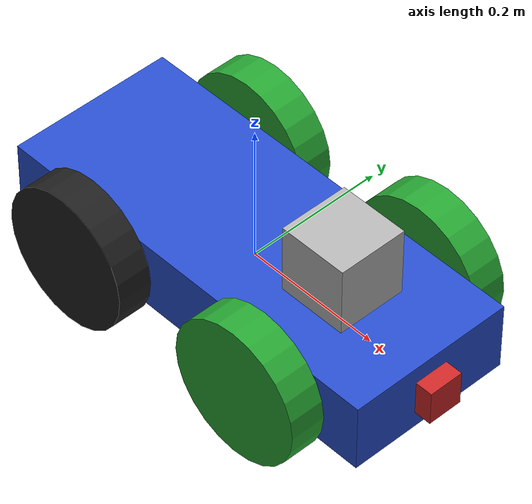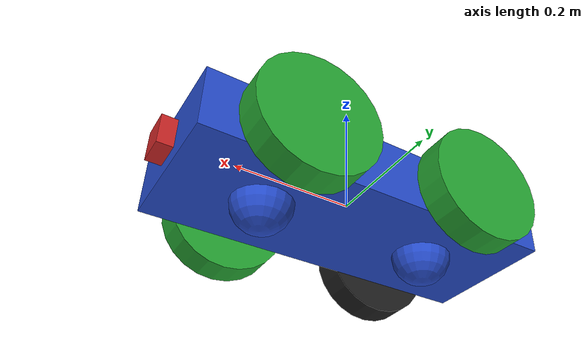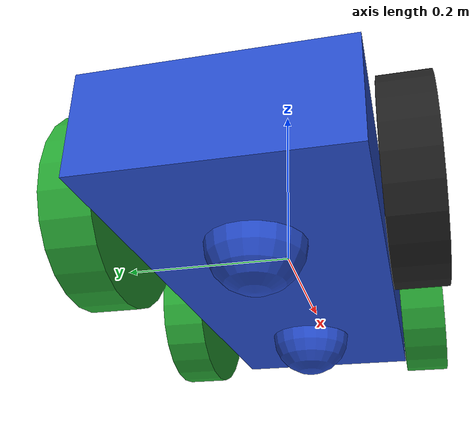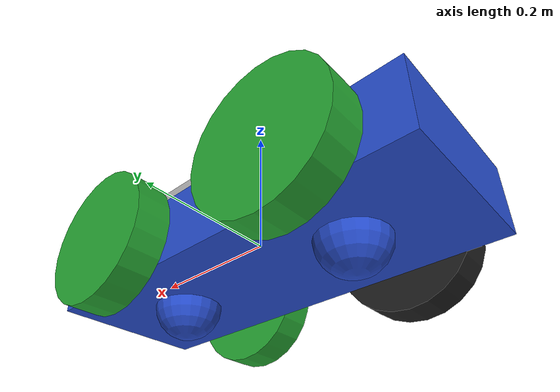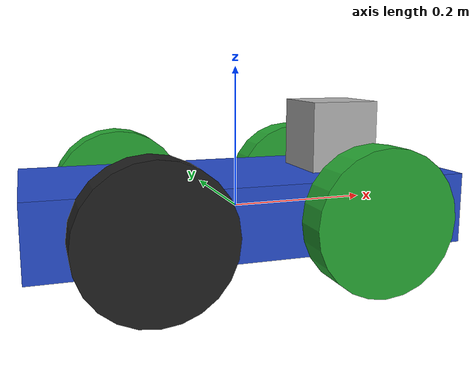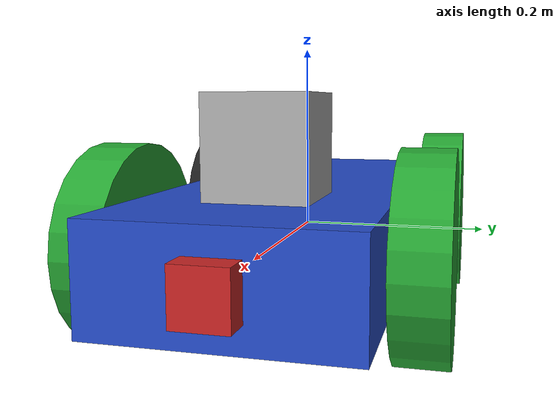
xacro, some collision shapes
<robot name="my_robot" xmlns:xacro="http://www.ros.org/wiki/xacro">

  <link name="robot_footprint"></link>

  <joint name="robot_footprint_joint" type="fixed">
    <origin xyz="0 0 0" rpy="0 0 0" />
    <parent link="robot_footprint"/>
    <child link="chassis" />
  </joint>

  <link name='chassis'>
    <pose>0 0 0.3 0 0 0</pose>

    <inertial>
      <mass value="15.0"/>
      <origin xyz="0.0 0 0" rpy=" 0 0 0"/>
      <inertia
          ixx="0.1" ixy="0" ixz="0"
          iyy="0.1" iyz="0"
          izz="0.1"
      />
    </inertial>

    <collision name='collision'>
      <origin xyz="0 0 0" rpy=" 0 0 0"/>
      <geometry>
        <box size=".6 .24 .1"/>
      </geometry>
    </collision>

    <visual name='chassis_visual'>
      <origin xyz="0 0 0" rpy=" 0 0 0"/>
      <geometry>
        <box size=".6 .24 .1"/>
      </geometry>
    </visual>

    <collision name='back_caster_collision'>
      <origin xyz="-0.15 0 -0.05" rpy=" 0 0 0"/>
      <geometry>
        <sphere radius="0.0499"/>
      </geometry>
    </collision>

    <visual name='back_caster_visual'>
      <origin xyz="-0.15 0 -0.05" rpy=" 0 0 0"/>
      <geometry>
        <sphere radius="0.05"/>
      </geometry>
    </visual>

    <collision name='front_caster_collision'>
      <origin xyz="0.15 0 -0.05" rpy=" 0 0 0"/>
      <geometry>
        <sphere radius="0.0499"/>
      </geometry>
    </collision>

    <visual name='front_caster_visual'>
      <origin xyz="0.15 0 -0.05" rpy=" 0 0 0"/>
      <geometry>
        <sphere radius="0.05"/>
      </geometry>
    </visual>

  </link>

  <link name ="left_wheel_1">
   <inertial>
     <mass value="5.0"/>
     <origin xyz="0 0 0" rpy="0 1.5707 1.5707"/>
     <inertia
          ixx="0.1" ixy="0" ixz="0"
          iyy="0.1" iyz="0"
          izz="0.1"/>
    </inertial>

   <collision name="left_wheel_collision_1">
     <origin xyz="0 0 0" rpy="0 1.5707 1.5707"/>
     <geometry>
       <cylinder radius="0.1" length="0.05"/>
     </geometry>
   </collision>

   <visual name="left_wheel_visual_1">
     <origin xyz="0 0 0" rpy="0 1.5707 1.5707"/>
     <geometry>
       <cylinder radius="0.1" length="0.05"/>
     </geometry>
   </visual>
  </link>

  <joint type="continuous" name="left_wheel_hinge_1">
    <origin xyz="0.15 0.15 0" rpy="0 0 0"/>
    <child link="left_wheel_1"/>
    <parent link="chassis"/>
    <axis xyz="0 1 0" rpy="0 0 0"/>
    <limit effort="10000" velocity="1000"/>
    <dynamics damping="1.0" friction="1.0"/>
  </joint>

  <link name ="left_wheel_2">
   <inertial>
     <mass value="5.0"/>
     <origin xyz="0 0 0" rpy="0 1.5707 1.5707"/>
     <inertia
          ixx="0.1" ixy="0" ixz="0"
          iyy="0.1" iyz="0"
          izz="0.1"/>
    </inertial>

   <collision name="left_wheel_collision_2">
     <origin xyz="0 0 0" rpy="0 1.5707 1.5707"/>
     <geometry>
       <cylinder radius="0.1" length="0.05"/>
     </geometry>
   </collision>

   <visual name="left_wheel_visual_2">
     <origin xyz="0 0 0" rpy="0 1.5707 1.5707"/>
     <geometry>
       <cylinder radius="0.1" length="0.05"/>
     </geometry>
   </visual>
  </link>

  <joint type="continuous" name="left_wheel_hinge_2">
    <origin xyz="-0.15 0.15 0" rpy="0 0 0"/>
    <child link="left_wheel_2"/>
    <parent link="chassis"/>
    <axis xyz="0 1 0" rpy="0 0 0"/>
    <limit effort="10000" velocity="1000"/>
    <dynamics damping="1.0" friction="1.0"/>
  </joint>

  <link name ="right_wheel_1">
   <inertial>
     <mass value="5.0"/>
     <origin xyz="0 0 0" rpy="0 1.5707 1.5707"/>
     <inertia
          ixx="0.1" ixy="0" ixz="0"
          iyy="0.1" iyz="0"
          izz="0.1"/>
    </inertial>

   <collision name="right_wheel_collision_1">
     <origin xyz="0 0 0" rpy="0 1.5707 1.5707"/>
     <geometry>
       <cylinder radius="0.1" length="0.05"/>
     </geometry>
   </collision>

   <visual name="right_wheel_visual_1">
     <origin xyz="0 0 0" rpy="0 1.5707 1.5707"/>
     <geometry>
       <cylinder radius="0.1" length="0.05"/>
     </geometry>
   </visual>
  </link>

  <joint type="continuous" name="right_wheel_hinge_1">
    <origin xyz="0.15 -0.15 0" rpy="0 0 0"/>
    <child link="right_wheel_1"/>
    <parent link="chassis"/>
    <axis xyz="0 1 0" rpy="0 0 0"/>
    <limit effort="10000" velocity="1000"/>
    <dynamics damping="1.0" friction="1.0"/>
  </joint>

  <link name ="right_wheel_2">
   <inertial>
     <mass value="5.0"/>
     <origin xyz="0 0 0" rpy="0 1.5707 1.5707"/>
     <inertia
          ixx="0.1" ixy="0" ixz="0"
          iyy="0.1" iyz="0"
          izz="0.1"/>
    </inertial>

   <collision name="right_wheel_collision_2">
     <origin xyz="0 0 0" rpy="0 1.5707 1.5707"/>
     <geometry>
       <cylinder radius="0.1" length="0.05"/>
     </geometry>
   </collision>

   <visual name="right_wheel_visual_2">
     <origin xyz="0 0 0" rpy="0 1.5707 1.5707"/>
     <geometry>
       <cylinder radius="0.1" length="0.05"/>
     </geometry>
     <material name="black" />
   </visual>
  </link>

  <joint type="continuous" name="right_wheel_hinge_2">
    <origin xyz="-0.15 -0.15 0" rpy="0 0 0"/>
    <child link="right_wheel_2"/>
    <parent link="chassis"/>
    <axis xyz="0 1 0" rpy="0 0 0"/>
    <limit effort="10000" velocity="1000"/>
    <dynamics damping="1.0" friction="1.0"/>
  </joint>

  <link name = "camera">
    <inertial>
      <mass value="0.1" />
      <origin xyz="0.05 0.05 0.05" rpy="0 0 0" />
      <inertia ixx="0.0000001" ixy="0" ixz="0" iyy="0.0000001" iyz="0" izz="0.0000001" />
    </inertial>

    <collision>
      <origin xyz="0 0 0" rpy="0 0 0"/>
      <geometry>
        <box size="0.05 0.05 0.05"/>
      </geometry>
    </collision>

    <visual>
      <origin xyz="0 0 0" rpy="0 0 0"/>
      <geometry>
        <box size="0.05 0.05 0.05"/>
      </geometry>
    </visual>
  </link>

 <joint name="camera_joint" type="fixed">
            <axis xyz="0 1 0" />
            <origin xyz="0.3 0 0" rpy="0 0 0"/>
            <parent link="chassis"/>
            <child link="camera"/>
    </joint>

 <link name="hokuyo">
    <collision name='hokuyo_collision'>
      <origin xyz="0 0 0" rpy="0 0 0"/>
      <geometry>
        <box size="0.1 0.1 0.1"/>
      </geometry>
    </collision>

    <visual>
      <origin xyz="0 0 0" rpy="0 0 0"/>
      <geometry>
        <mesh filename="package://my_robot/meshes/hokuyo.dae"/>
      </geometry>
    </visual>

    <inertial>
      <mass value="1e-5"/>
      <origin xyz="0.0 0 0" rpy="0 0 0"/>
      <inertia
          ixx="1e-6" ixy="0" ixz="0"
          iyy="1e-6" iyz="0"
          izz="1e-6"
      />
    </inertial>
  </link>

  <joint type="fixed" name="hokuyo_joint">
    <origin xyz="0.15 0 0.1" rpy="0 0 0"/>
    <child link="hokuyo"/>
    <parent link="chassis"/>
    <axis xyz="0 1 0" rpy="0 0 0"/>
  </joint>

<gazebo reference="chassis">
    <material>Gazebo/Blue</material>
</gazebo>

<gazebo reference="left_wheel_1">
    <material>Gazebo/Green</material>
</gazebo>

<gazebo reference="left_wheel_2">
    <material>Gazebo/Green</material>
</gazebo>

<gazebo reference="right_wheel_1">
    <material>Gazebo/Green</material>
</gazebo>

<gazebo reference="right_wheel_2">
    <material>Gazebo/Green</material>
</gazebo>

<gazebo reference="camera">
    <material>Gazebo/Red</material>
</gazebo>
</robot>
